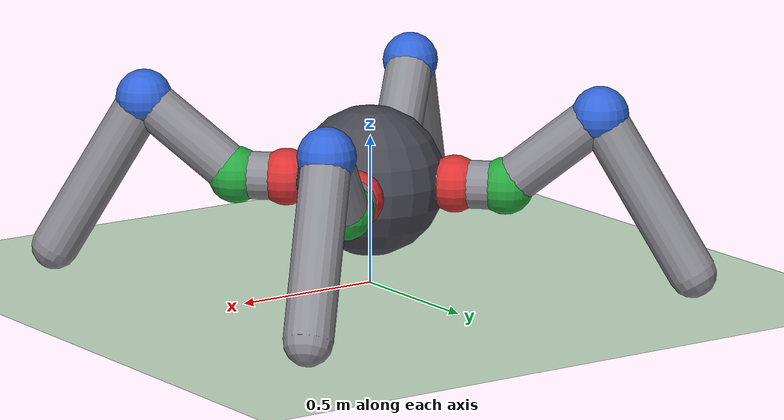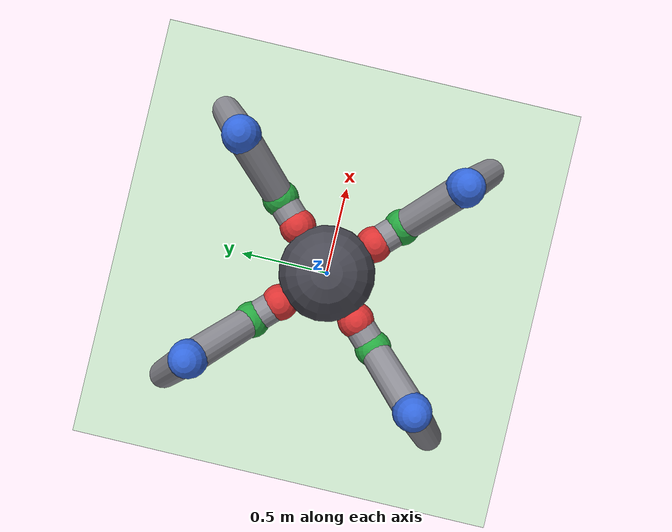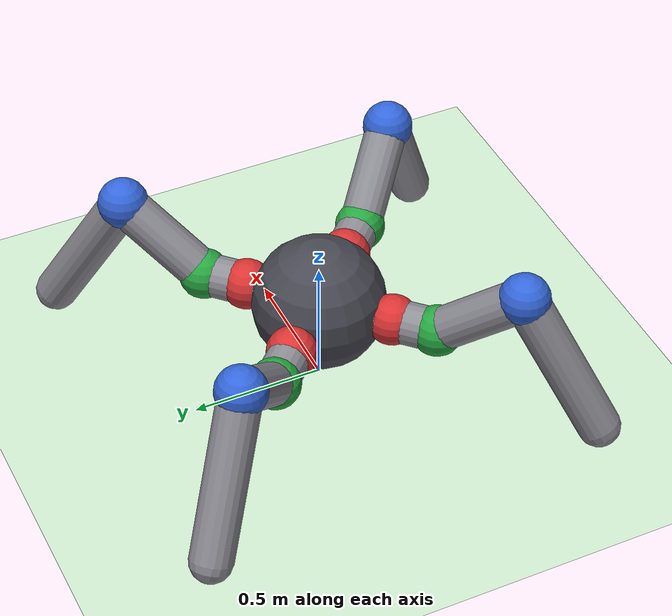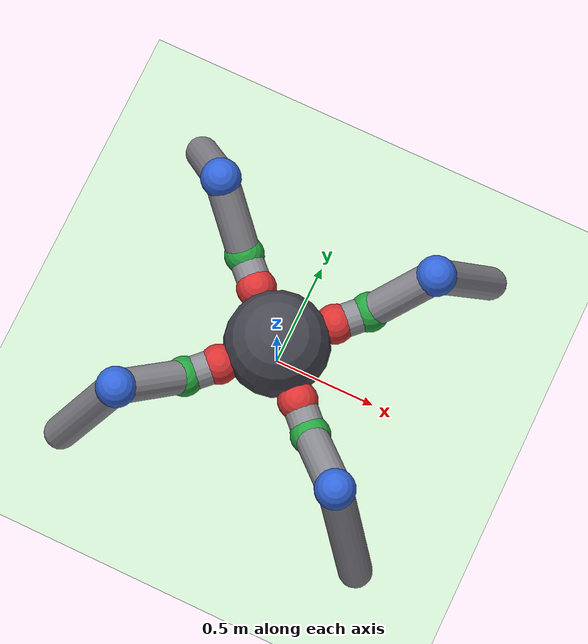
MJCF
<mujoco model="spyder12">
  <compiler angle="degree" coordinate="local" inertiafromgeom="true"/>
  <option integrator="RK4" timestep="0.01"/>

  <default>
    <joint armature="1" damping="1" stiffness="30" limited="true"/>
    <geom condim="3" density="5.0" friction="1 0.5 0.5" margin="0.01" rgba="0.55 0.55 0.58 1"/>
    <motor ctrllimited="true" ctrlrange="-1 1" gear="40"/>
    <default class="marker">
      <!-- Colored joint markers: red=hip, green=lift, blue=knee. Pure visuals —
           no collisions, no mass — they document the joint layout in renders. -->
      <geom type="sphere" size="0.095" contype="0" conaffinity="0" density="0"/>
    </default>
  </default>

  <!-- Floor texture + skybox (same recipe as Gymnasium's ant.xml). Without a
       ground plane the spider free-falls forever — a robot model alone is not
       a world. -->
  <asset>
    <texture builtin="gradient" height="100" rgb1="1 1 1" rgb2="0 0 0" type="skybox" width="100"/>
    <texture builtin="checker" height="100" name="texplane" rgb1="0.28 0.30 0.32" rgb2="0.38 0.40 0.42" type="2d" width="100"/>
    <material name="MatPlane" reflectance="0.3" shininess="1" specular="1" texrepeat="60 60" texture="texplane"/>
  </asset>

  <worldbody>
    <light cutoff="100" diffuse="1 1 1" dir="0 0 -1.3" directional="true" exponent="1" pos="0 0 1.3" specular=".1 .1 .1"/>
    <geom conaffinity="1" condim="3" material="MatPlane" name="floor" pos="0 0 0" rgba="0.8 0.9 0.8 1" size="40 40 40" type="plane"/>

    <body name="torso" pos="0 0 0.35">
      <camera name="track" mode="trackcom" pos="0 -3 0.3" xyaxes="1 0 0 0 0 1"/>
      <joint armature="0" damping="0" stiffness="0" limited="false" margin="0.01" name="root" pos="0 0 0" type="free"/>
      <geom name="torso_geom" pos="0 0 0" size="0.25" type="sphere" rgba="0.28 0.28 0.32 1"/>
      <!-- Coxa stubs: welded to the torso (they carry no joint), one per leg. -->
      <geom name="stub_1" fromto="0 0 0  0.2  0.2 0" size="0.08" type="capsule"/>
      <geom name="stub_2" fromto="0 0 0 -0.2  0.2 0" size="0.08" type="capsule"/>
      <geom name="stub_3" fromto="0 0 0 -0.2 -0.2 0" size="0.08" type="capsule"/>
      <geom name="stub_4" fromto="0 0 0  0.2 -0.2 0" size="0.08" type="capsule"/>

      <!-- ═ Leg 1 · front-left (+x,+y) ═ -->
      <body name="coxa_1" pos="0.2 0.2 0">
        <joint name="hip_1" type="hinge" axis="0 0 1" pos="0 0 0" range="-40 40"/>
        <geom class="marker" rgba="0.85 0.20 0.20 1"/>
        <geom name="coxa_1_geom" fromto="0 0 0 0.12 0.12 0" size="0.08" type="capsule"/>
        <body name="femur_1" pos="0.12 0.12 0">
          <joint name="lift_1" type="hinge" axis="-1 1 0" pos="0 0 0" range="-60 60"/>
          <geom class="marker" rgba="0.15 0.65 0.25 1"/>
          <geom name="femur_1_geom" fromto="0 0 0 0.22 0.22 0.25" size="0.08" type="capsule"/>
          <body name="tibia_1" pos="0.22 0.22 0.25">
            <joint name="knee_1" type="hinge" axis="-1 1 0" pos="0 0 0" range="-50 50"/>
            <geom class="marker" rgba="0.20 0.40 0.85 1"/>
            <geom name="tibia_1_geom" fromto="0 0 0 0.22 0.22 -0.52" size="0.08" type="capsule"/>
          </body>
        </body>
      </body>

      <!-- ═ Leg 2 · front-right (-x,+y) ═ -->
      <body name="coxa_2" pos="-0.2 0.2 0">
        <joint name="hip_2" type="hinge" axis="0 0 1" pos="0 0 0" range="-40 40"/>
        <geom class="marker" rgba="0.85 0.20 0.20 1"/>
        <geom name="coxa_2_geom" fromto="0 0 0 -0.12 0.12 0" size="0.08" type="capsule"/>
        <body name="femur_2" pos="-0.12 0.12 0">
          <joint name="lift_2" type="hinge" axis="1 1 0" pos="0 0 0" range="-60 60"/>
          <geom class="marker" rgba="0.15 0.65 0.25 1"/>
          <geom name="femur_2_geom" fromto="0 0 0 -0.22 0.22 0.25" size="0.08" type="capsule"/>
          <body name="tibia_2" pos="-0.22 0.22 0.25">
            <joint name="knee_2" type="hinge" axis="1 1 0" pos="0 0 0" range="-50 50"/>
            <geom class="marker" rgba="0.20 0.40 0.85 1"/>
            <geom name="tibia_2_geom" fromto="0 0 0 -0.22 0.22 -0.52" size="0.08" type="capsule"/>
          </body>
        </body>
      </body>

      <!-- ═ Leg 3 · back-left (-x,-y) ═ -->
      <body name="coxa_3" pos="-0.2 -0.2 0">
        <joint name="hip_3" type="hinge" axis="0 0 1" pos="0 0 0" range="-40 40"/>
        <geom class="marker" rgba="0.85 0.20 0.20 1"/>
        <geom name="coxa_3_geom" fromto="0 0 0 -0.12 -0.12 0" size="0.08" type="capsule"/>
        <body name="femur_3" pos="-0.12 -0.12 0">
          <joint name="lift_3" type="hinge" axis="-1 1 0" pos="0 0 0" range="-60 60"/>
          <geom class="marker" rgba="0.15 0.65 0.25 1"/>
          <geom name="femur_3_geom" fromto="0 0 0 -0.22 -0.22 0.25" size="0.08" type="capsule"/>
          <body name="tibia_3" pos="-0.22 -0.22 0.25">
            <joint name="knee_3" type="hinge" axis="-1 1 0" pos="0 0 0" range="-50 50"/>
            <geom class="marker" rgba="0.20 0.40 0.85 1"/>
            <geom name="tibia_3_geom" fromto="0 0 0 -0.22 -0.22 -0.52" size="0.08" type="capsule"/>
          </body>
        </body>
      </body>

      <!-- ═ Leg 4 · back-right (+x,-y) ═ -->
      <body name="coxa_4" pos="0.2 -0.2 0">
        <joint name="hip_4" type="hinge" axis="0 0 1" pos="0 0 0" range="-40 40"/>
        <geom class="marker" rgba="0.85 0.20 0.20 1"/>
        <geom name="coxa_4_geom" fromto="0 0 0 0.12 -0.12 0" size="0.08" type="capsule"/>
        <body name="femur_4" pos="0.12 -0.12 0">
          <joint name="lift_4" type="hinge" axis="1 1 0" pos="0 0 0" range="-60 60"/>
          <geom class="marker" rgba="0.15 0.65 0.25 1"/>
          <geom name="femur_4_geom" fromto="0 0 0 0.22 -0.22 0.25" size="0.08" type="capsule"/>
          <body name="tibia_4" pos="0.22 -0.22 0.25">
            <joint name="knee_4" type="hinge" axis="1 1 0" pos="0 0 0" range="-50 50"/>
            <geom class="marker" rgba="0.20 0.40 0.85 1"/>
            <geom name="tibia_4_geom" fromto="0 0 0 0.22 -0.22 -0.52" size="0.08" type="capsule"/>
          </body>
        </body>
      </body>
    </body>
  </worldbody>

  <actuator>
    <!-- Clean per-leg order (leg 1..4: hip, lift, knee). Action index meaning is
         positional — this order is the Spyder-v0 action-space contract. -->
    <motor name="hip_1"  joint="hip_1"/>
    <motor name="lift_1" joint="lift_1"/>
    <motor name="knee_1" joint="knee_1"/>
    <motor name="hip_2"  joint="hip_2"/>
    <motor name="lift_2" joint="lift_2"/>
    <motor name="knee_2" joint="knee_2"/>
    <motor name="hip_3"  joint="hip_3"/>
    <motor name="lift_3" joint="lift_3"/>
    <motor name="knee_3" joint="knee_3"/>
    <motor name="hip_4"  joint="hip_4"/>
    <motor name="lift_4" joint="lift_4"/>
    <motor name="knee_4" joint="knee_4"/>
  </actuator>
</mujoco>
